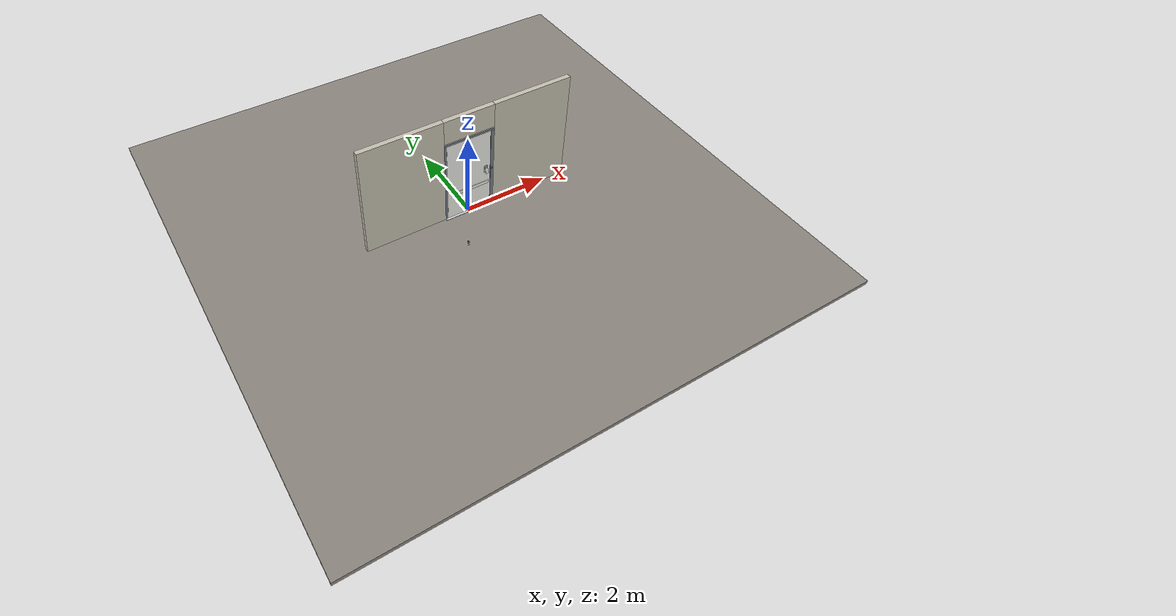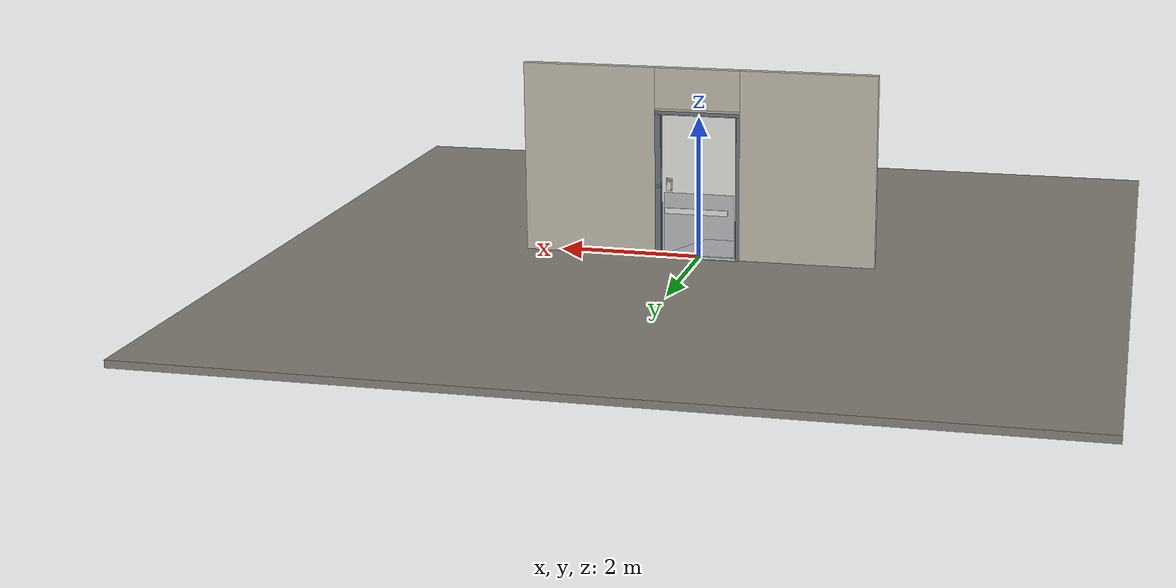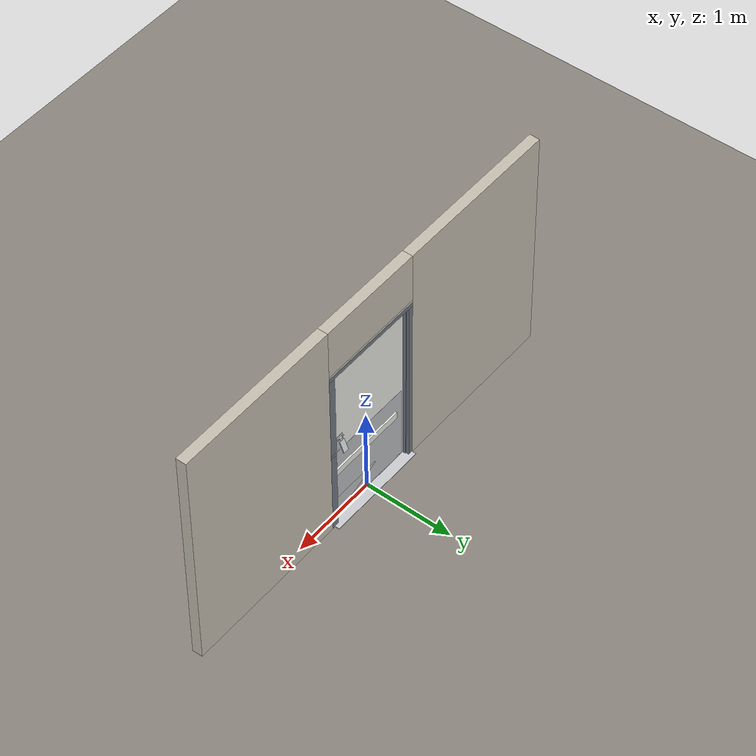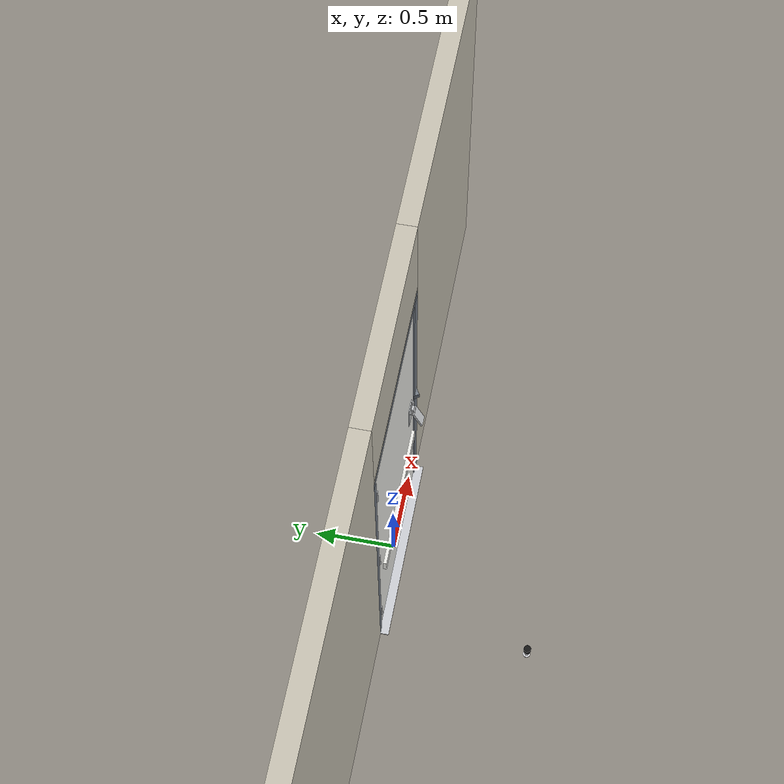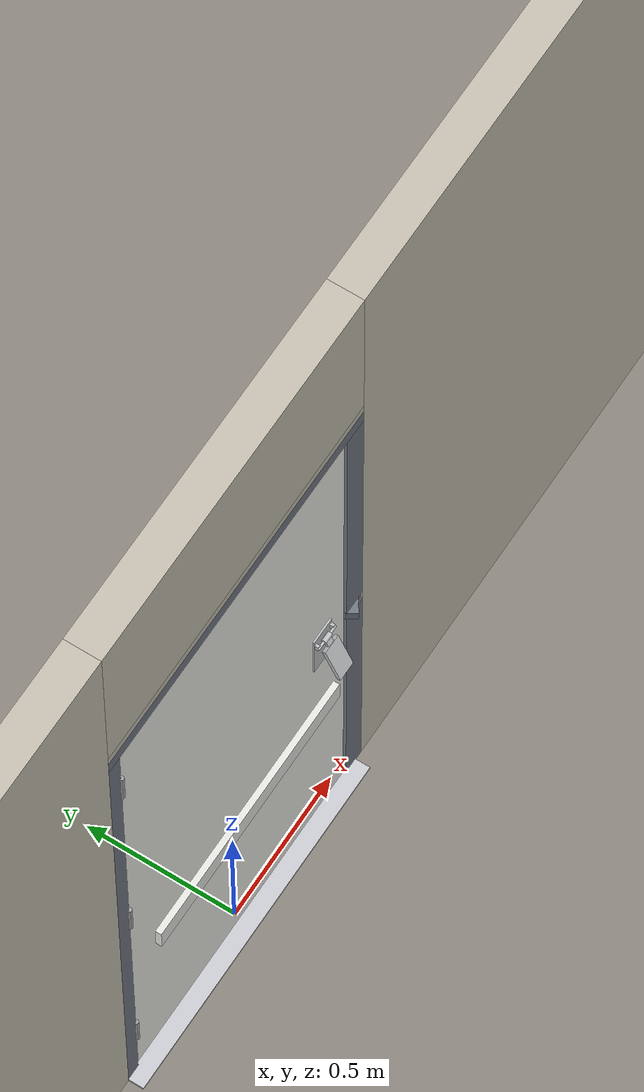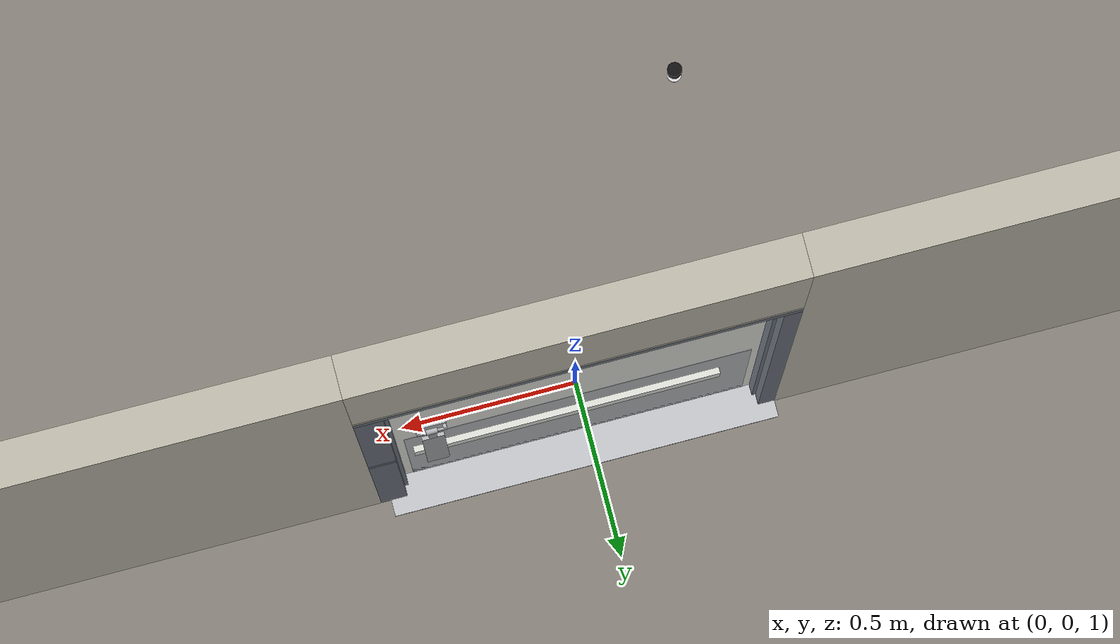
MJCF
<?xml version="1.0" ?>
<mujoco model="db0648_swing_single_simple">
  <compiler angle="radian" meshdir="../../hardware" texturedir="../../textures" autolimits="true" inertiafromgeom="false"/>
  <option timestep="0.002" integrator="implicitfast" cone="elliptic" impratio="10" noslip_iterations="3">
    <flag multiccd="enable"/>
  </option>
  <size memory="16M"/>
  <default>
    <geom condim="4" solref="0.005 1" solimp="0.95 0.99 0.001"/>
    <joint solreflimit="0.005 1" solimplimit="0.95 0.99 0.001"/>
    <tendon solreflimit="0.005 1"/>
    <equality solref="0.002 1"/>
  </default>
  <visual>
    <headlight ambient="0.4 0.4 0.4" diffuse="0.7 0.7 0.7" specular="0.2 0.2 0.2"/>
    <quality shadowsize="4096"/>
    <map znear="0.01" zfar="60"/>
  </visual>
  <asset>
    <mesh name="hinge_e22b26c0c1" file="hinge_e22b26c0c1.obj"/>
    <mesh name="hinge_jamb_e1d088f8dc" file="hinge_jamb_e1d088f8dc.obj"/>
    <material name="mat_floor" rgba="0.55 0.53 0.5 1" specular="0.2" shininess="0.15" reflectance="0"/>
    <material name="mat_wall" rgba="0.78 0.76 0.7 1" specular="0.2" shininess="0.1" reflectance="0"/>
    <material name="mat_leaf" rgba="0.93 0.93 0.91 1" specular="0.2" shininess="0.39" reflectance="0"/>
    <material name="mat_hinge" rgba="0.65 0.66 0.68 1" specular="0.74" shininess="0.5" reflectance="0.36"/>
    <material name="mat_op_stainless" rgba="0.75 0.76 0.77 1" specular="0.8" shininess="0.65" reflectance="0.4"/>
    <material name="mat_bolt" rgba="0.75 0.76 0.77 1" specular="0.8" shininess="0.65" reflectance="0.4"/>
    <material name="mat_frame" rgba="0.45 0.48 0.52 1" specular="0.32" shininess="0.6" reflectance="0.08"/>
    <material name="mat_seal" rgba="0.1 0.1 0.1 1" specular="0.2" shininess="0.1" reflectance="0"/>
    <material name="mat_threshold" rgba="0.8 0.81 0.83 1" specular="0.8" shininess="0.6" reflectance="0.4"/>
    <material name="mat_kick" rgba="0.75 0.76 0.77 1" specular="0.8" shininess="0.65" reflectance="0.4"/>
    <material name="mat_bumper" rgba="0.92 0.92 0.9 1" specular="0.2" shininess="0.6" reflectance="0"/>
    <material name="mat_bumper_stop" rgba="0.08 0.08 0.08 1" specular="0.2" shininess="0.1" reflectance="0"/>
    <material name="mat_stop_base" rgba="0.9 0.9 0.92 1" specular="0.8" shininess="0.9" reflectance="0.4"/>
    <texture name="skybox" type="skybox" builtin="gradient" rgb1="0.6 0.7 0.85" rgb2="0.9 0.92 0.95" width="256" height="256"/>
  </asset>
  <worldbody>
    <light name="sun" pos="1.5 -2.5 4" dir="-0.3 0.5 -0.8" directional="true" diffuse="0.8 0.8 0.8" specular="0.3 0.3 0.3" castshadow="true"/>
    <light name="fill" pos="-1.5 2.5 3" dir="0.3 -0.5 -0.7" directional="true" diffuse="0.35 0.35 0.4" castshadow="false"/>
    <camera name="robot_view" pos="0 -2.513687 1.734312" xyaxes="1 0 0 0 0.26963 0.962964" fovy="52"/>
    <camera name="far_view" pos="0 2.570688 1.734312" xyaxes="-1 0 0 0 -0.26963 0.962964" fovy="52"/>
    <camera name="iso" pos="1.932062 -2.106937 2.141063" xyaxes="0.741536 0.670913 0 -0.242917 0.268487 0.932151" fovy="46"/>
    <camera name="detail_handle" pos="0.601 -0.869521 1.293663" xyaxes="0.97561 0.219512 0 -0.070934 0.315262 0.94635" fovy="38"/>
    <geom name="floor" type="box" size="6 6 0.05" pos="0 0 -0.05" material="mat_floor" group="0" contype="1" conaffinity="1" friction="0.8 0.005 0.0001" density="2400"/>
    <geom name="wall_left" type="box" size="0.9565 0.0575 1.35" pos="-1.5435 0.0285 1.35" material="mat_wall" group="0" contype="1" conaffinity="1" friction="0.6 0.005 0.0001" density="800"/>
    <geom name="wall_right" type="box" size="0.9415 0.0575 1.35" pos="1.5585 0.0285 1.35" material="mat_wall" group="0" contype="1" conaffinity="1" friction="0.6 0.005 0.0001" density="800"/>
    <geom name="wall_header" type="box" size="0.602 0.0575 0.2875" pos="0.015 0.0285 2.4125" material="mat_wall" group="0" contype="1" conaffinity="1" friction="0.6 0.005 0.0001" density="800"/>
    <geom name="hinge_0_jamb" type="mesh" mesh="hinge_jamb_e1d088f8dc" pos="-0.534 -0.029 0.259" material="mat_hinge" group="1" contype="0" conaffinity="0" density="7850"/>
    <geom name="hinge_1_jamb" type="mesh" mesh="hinge_jamb_e1d088f8dc" pos="-0.534 -0.029 1.025" material="mat_hinge" group="1" contype="0" conaffinity="0" density="7850"/>
    <geom name="hinge_2_jamb" type="mesh" mesh="hinge_jamb_e1d088f8dc" pos="-0.534 -0.029 1.861" material="mat_hinge" group="1" contype="0" conaffinity="0" density="7850"/>
    <geom name="jamb_hinge" type="box" size="0.025 0.0575 1.0225" pos="-0.562 0.0285 1.0225" material="mat_frame" group="0" contype="1" conaffinity="1" friction="0.6 0.005 0.0001" density="300"/>
    <geom name="strike_1016_wall_n" type="box" size="0.04 0.03825 0.018" pos="0.577 0.04775 1.016" material="mat_frame" group="0" contype="1" conaffinity="1" friction="0.6 0.005 0.0001" density="300"/>
    <geom name="strike_1016_wall_p" type="box" size="0.04 0.008 0.018" pos="0.577 -0.0175 1.016" material="mat_frame" group="0" contype="1" conaffinity="1" friction="0.6 0.005 0.0001" density="300"/>
    <geom name="strike_1016_ramp" type="box" size="0.04 0.018028 0.018" pos="0.580282 -0.018312 1.016" quat="0.957092 0 0 0.289784" material="mat_frame" group="0" contype="1" conaffinity="1" friction="0.12 0.005 0.0001" density="300"/>
    <geom name="strike_1016_back" type="box" size="0.0285 0.0095 0.018" pos="0.5885 0 1.016" material="mat_frame" group="0" contype="1" conaffinity="1" friction="0.6 0.005 0.0001" density="300"/>
    <geom name="jamb_strike_0" type="box" size="0.04 0.0575 0.499" pos="0.577 0.0285 0.499" material="mat_frame" group="0" contype="1" conaffinity="1" friction="0.6 0.005 0.0001" density="300"/>
    <geom name="jamb_strike_1" type="box" size="0.04 0.0575 0.5055" pos="0.577 0.0285 1.5395" material="mat_frame" group="0" contype="1" conaffinity="1" friction="0.6 0.005 0.0001" density="300"/>
    <geom name="jamb_head" type="box" size="0.602 0.0575 0.025" pos="0.015 0.0285 2.07" material="mat_frame" group="0" contype="1" conaffinity="1" friction="0.6 0.005 0.0001" density="300"/>
    <geom name="head_stud" type="box" size="0.602 0.0575 0.015" pos="0.015 0.0285 2.11" material="mat_wall" group="0" contype="1" conaffinity="1" friction="0.6 0.005 0.0001" density="500"/>
    <geom name="stop_hinge" type="box" size="0.0055 0.016 1.0225" pos="-0.5315 0.0385 1.0225" material="mat_frame" group="0" contype="1" conaffinity="1" friction="0.6 0.005 0.0001" density="300"/>
    <geom name="stop_strike" type="box" size="0.0055 0.016 1.0225" pos="0.5315 0.0385 1.0225" material="mat_frame" group="0" contype="1" conaffinity="1" friction="0.6 0.005 0.0001" density="300"/>
    <geom name="stop_head" type="box" size="0.537 0.016 0.0055" pos="0 0.0385 2.0395" material="mat_frame" group="0" contype="1" conaffinity="1" friction="0.6 0.005 0.0001" density="300"/>
    <geom name="seal_hinge" type="box" size="0.004 0.002 1.0225" pos="-0.534 0.024 1.0225" material="mat_seal" group="1" contype="0" conaffinity="0" density="1100"/>
    <geom name="seal_strike" type="box" size="0.004 0.002 1.0225" pos="0.534 0.024 1.0225" material="mat_seal" group="1" contype="0" conaffinity="0" density="1100"/>
    <geom name="seal_head" type="box" size="0.517 0.002 0.008" pos="0 0.024 2.033" material="mat_seal" group="1" contype="0" conaffinity="0" density="1100"/>
    <geom name="threshold" type="box" size="0.587 0.1075 0.004" pos="0 0.0285 0.004" material="mat_threshold" group="0" contype="1" conaffinity="1" friction="0.6 0.005 0.0001" density="2700"/>
    <geom name="door_stop_base" type="cylinder" size="0.022 0.003" pos="-0.55 -0.93595 0.003" material="mat_stop_base" group="0" contype="1" conaffinity="1" friction="0.6 0.005 0.0001" density="7850"/>
    <geom name="door_stop_post" type="cylinder" size="0.012 0.0245" pos="-0.55 -0.93595 0.0305" material="mat_stop_base" group="0" contype="1" conaffinity="1" friction="0.6 0.005 0.0001" density="7850"/>
    <geom name="door_stop_bumper" type="cylinder" size="0.022 0.02" pos="-0.55 -0.93595 0.075" material="mat_bumper_stop" group="0" contype="1" conaffinity="1" friction="0.6 0.005 0.0001" density="1100"/>
    <site name="approach_point" pos="0 -1.5 0" quat="1 0 0 0" size="0.05" rgba="0.2 0.9 0.2 0.5" group="4"/>
    <site name="goal_point" pos="0 1.5 0" quat="1 0 0 0" size="0.05" rgba="0.2 0.9 0.2 0.5" group="4"/>
    <site name="door_plane_center" pos="0 0 1.0225" quat="1 0 0 0" size="0.02" rgba="0.2 0.9 0.2 0.5" group="4"/>
    <body name="leaf" pos="-0.537 0 0">
      <inertial pos="0.536753 0.003516 0.910988" mass="81.698343" quat="0.501077 -0.497915 -0.499299 -0.501701" diaginertia="7.727913197 27.850561868 35.539724759"/>
      <joint name="leaf_hinge" type="hinge" axis="0 0 -1" pos="0.003 -0.029 0" limited="true" range="0 1.570796" solreflimit="0.02 1" damping="0.525663" frictionloss="0.856133" armature="0.02"/>
      <geom name="leaf_slab" type="box" size="0.5335 0.022 1.016" pos="0.5365 0 1.025" material="mat_leaf" group="0" contype="1" conaffinity="1" friction="0.35 0.005 0.0001" density="1"/>
      <geom name="hinge_0" type="mesh" mesh="hinge_e22b26c0c1" pos="0.003 -0.029 0.259" material="mat_hinge" group="1" contype="0" conaffinity="0" density="7850"/>
      <geom name="hinge_1" type="mesh" mesh="hinge_e22b26c0c1" pos="0.003 -0.029 1.025" material="mat_hinge" group="1" contype="0" conaffinity="0" density="7850"/>
      <geom name="hinge_2" type="mesh" mesh="hinge_e22b26c0c1" pos="0.003 -0.029 1.861" material="mat_hinge" group="1" contype="0" conaffinity="0" density="7850"/>
      <geom name="leaf_handle_paddle_backplate_n" type="box" size="0.044 0.003 0.09" pos="0.958 -0.025 1.035895" material="mat_op_stainless" group="0" contype="1" conaffinity="1" friction="0.6 0.005 0.0001" density="3000"/>
      <geom name="leaf_handle_paddle_bearing_n_-1" type="box" size="0.005 0.006 0.009" pos="0.92 -0.034 1.098895" material="mat_op_stainless" group="0" contype="1" conaffinity="1" friction="0.6 0.005 0.0001" density="3000"/>
      <geom name="leaf_handle_paddle_bearing_n_1" type="box" size="0.005 0.006 0.009" pos="0.996 -0.034 1.098895" material="mat_op_stainless" group="0" contype="1" conaffinity="1" friction="0.6 0.005 0.0001" density="3000"/>
      <geom name="leaf_handle_paddle_pin_n" type="cylinder" size="0.004 0.043" pos="0.958 -0.04 1.098895" quat="0.707107 0 0.707107 0" material="mat_op_stainless" group="1" contype="0" conaffinity="0" density="7850"/>
      <geom name="leaf_handle_paddle_backplate_p" type="box" size="0.044 0.003 0.09" pos="0.958 0.025 1.035895" material="mat_op_stainless" group="0" contype="1" conaffinity="1" friction="0.6 0.005 0.0001" density="3000"/>
      <geom name="leaf_handle_paddle_bearing_p_-1" type="box" size="0.005 0.006 0.009" pos="0.92 0.034 1.098895" material="mat_op_stainless" group="0" contype="1" conaffinity="1" friction="0.6 0.005 0.0001" density="3000"/>
      <geom name="leaf_handle_paddle_bearing_p_1" type="box" size="0.005 0.006 0.009" pos="0.996 0.034 1.098895" material="mat_op_stainless" group="0" contype="1" conaffinity="1" friction="0.6 0.005 0.0001" density="3000"/>
      <geom name="leaf_handle_paddle_pin_p" type="cylinder" size="0.004 0.043" pos="0.958 0.04 1.098895" quat="0.707107 0 0.707107 0" material="mat_op_stainless" group="1" contype="0" conaffinity="0" density="7850"/>
      <geom name="leaf_latch_bolt_faceplate" type="box" size="0.0006 0.014 0.028" pos="1.0694 0 1.016" material="mat_bolt" group="1" contype="0" conaffinity="0" density="8500"/>
      <geom name="kick_plate_p" type="box" size="0.5035 0.0008 0.125" pos="0.5365 0.0228 0.144" material="mat_kick" group="2" contype="0" conaffinity="0" density="7900"/>
      <geom name="armor_plate" type="box" size="0.5035 0.0008 0.45" pos="0.5365 0.0228 0.469" material="mat_kick" group="2" contype="0" conaffinity="0" density="7900"/>
      <geom name="bumper_rail_n" type="box" size="0.4485 0.01 0.04" pos="0.5715 -0.032 0.659" material="mat_bumper" group="0" contype="1" conaffinity="1" friction="0.6 0.005 0.0001" density="1200"/>
      <geom name="bumper_rail_p" type="box" size="0.4485 0.01 0.04" pos="0.5715 0.032 0.659" material="mat_bumper" group="0" contype="1" conaffinity="1" friction="0.6 0.005 0.0001" density="1200"/>
      <site name="leaf_edge_mid" pos="1.07 0 1.016" quat="1 0 0 0" size="0.02" rgba="0.2 0.9 0.2 0.5" group="4"/>
      <body name="leaf_handle" pos="0.958 -0.04 1.098895">
        <inertial pos="0 -0.031074 -0.073496" mass="0.333798" quat="-0.390699 0.589368 0.589368 0.390699" diaginertia="0.00010582 0.00062862 0.000726597"/>
        <joint name="leaf_handle_hinge" type="hinge" axis="-1 0 0" limited="true" range="0 0.4" damping="0.27663" frictionloss="0.056" stiffness="1.5" springref="-1" armature="0.01"/>
        <geom name="leaf_handle_paddle_col_n" type="box" size="0.032 0.006 0.063" pos="0 -0.035048 -0.082895" quat="0.980067 -0.198669 0 0" material="mat_op_stainless" group="0" contype="1" conaffinity="1" friction="0.6 0.005 0.0001" density="3000"/>
        <geom name="leaf_handle_paddle_neck_n" type="box" size="0.012 0.004 0.021" pos="0 -0.008178 -0.019342" quat="0.980067 -0.198669 0 0" material="mat_op_stainless" group="0" contype="1" conaffinity="1" friction="0.6 0.005 0.0001" density="3000"/>
        <geom name="leaf_handle_paddle_hub_n" type="cylinder" size="0.008 0.016" pos="0 0 0" quat="0.707107 0 0.707107 0" material="mat_op_stainless" group="1" contype="0" conaffinity="0" density="3000"/>
        <site name="leaf_handle_grip_n" pos="0 -0.029521 -0.085232" quat="0.552531 -0.833492 0 0" size="0.012" rgba="0.2 0.9 0.2 0.5" group="4"/>
      </body>
      <body name="leaf_handle_paddle_follower_p" pos="0.958 0.04 1.098895">
        <inertial pos="0 0.031074 -0.073496" mass="0.333798" quat="0.589368 -0.390699 -0.390699 -0.589368" diaginertia="0.00010582 0.00062862 0.000726597"/>
        <joint name="leaf_handle_paddle_follower_p_hinge" type="hinge" axis="-1 0 0" limited="true" range="0 0.4" armature="0.002"/>
        <geom name="leaf_handle_paddle_col_p" type="box" size="0.032 0.006 0.063" pos="0 0.035048 -0.082895" quat="0.980067 0.198669 0 0" material="mat_op_stainless" group="0" contype="1" conaffinity="1" friction="0.6 0.005 0.0001" density="3000"/>
        <geom name="leaf_handle_paddle_neck_p" type="box" size="0.012 0.004 0.021" pos="0 0.008178 -0.019342" quat="0.980067 0.198669 0 0" material="mat_op_stainless" group="0" contype="1" conaffinity="1" friction="0.6 0.005 0.0001" density="3000"/>
        <geom name="leaf_handle_paddle_hub_p" type="cylinder" size="0.008 0.016" pos="0 0 0" quat="0.707107 0 0.707107 0" material="mat_op_stainless" group="1" contype="0" conaffinity="0" density="3000"/>
        <site name="leaf_handle_grip_p" pos="0 0.040574 -0.080559" quat="0.833492 -0.552531 0 0" size="0.012" rgba="0.2 0.9 0.2 0.5" group="4"/>
      </body>
      <body name="leaf_latch_bolt" pos="1.07 0 1.016">
        <inertial pos="-0.0055 0 0" mass="0.074627" quat="0.92388 -0.382683 0 0" diaginertia="0.000002271 0.000013255 0.000013255"/>
        <joint name="leaf_latch_bolt_slide" type="slide" axis="-1 0 0" limited="true" range="0 0.019" damping="2" frictionloss="0.3" stiffness="550" springref="-0.01" armature="0.1"/>
        <geom name="leaf_latch_bolt_capsule" type="capsule" size="0.008 0.0165" pos="-0.0055 0 0" quat="0.707107 0 0.707107 0" material="mat_bolt" group="0" contype="1" conaffinity="1" friction="0.2 0.005 0.0001" density="8500"/>
      </body>
    </body>
  </worldbody>
  <tendon>
    <fixed name="leaf_latch_bolt_coupling" limited="true" range="0 10">
      <joint joint="leaf_latch_bolt_slide" coef="1"/>
      <joint joint="leaf_handle_hinge" coef="-0.051351"/>
    </fixed>
  </tendon>
  <equality>
    <joint name="leaf_handle_paddle_cam_p" joint1="leaf_handle_paddle_follower_p_hinge" joint2="leaf_handle_hinge" polycoef="0 1 0 0 0" active="true"/>
  </equality>
  <sensor>
    <jointpos name="leaf_hinge_pos" joint="leaf_hinge"/>
    <jointvel name="leaf_hinge_vel" joint="leaf_hinge"/>
    <jointpos name="leaf_handle_hinge_pos" joint="leaf_handle_hinge"/>
    <jointvel name="leaf_handle_hinge_vel" joint="leaf_handle_hinge"/>
    <jointpos name="leaf_latch_bolt_slide_pos" joint="leaf_latch_bolt_slide"/>
    <jointvel name="leaf_latch_bolt_slide_vel" joint="leaf_latch_bolt_slide"/>
  </sensor>
</mujoco>
